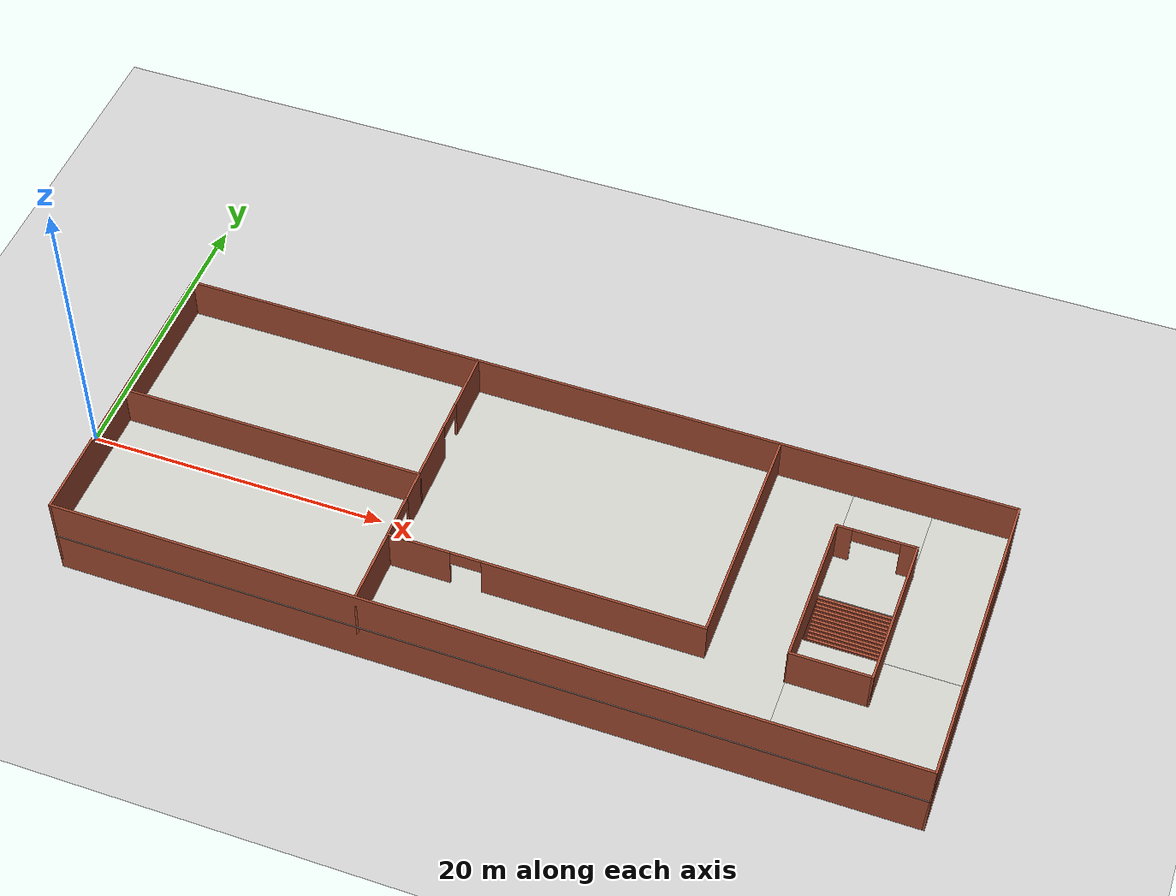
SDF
<sdf version="1.7">
 <world name="default">
  <light name="sun" type="directional">
   <pose>0 0 10 0 -0 0</pose>
   <diffuse>0.8 0.8 0.8 1</diffuse>
   <specular>0.2 0.2 0.2 1</specular>
   <attenuation>
    <range>1000</range>
    <constant>0.9</constant>
    <linear>0.01</linear>
    <quadratic>0.001</quadratic>
   </attenuation>
   <direction>-0.5 0.1 -0.9</direction>
   <spot><inner_angle>0</inner_angle><outer_angle>0</outer_angle><falloff>0</falloff></spot>
  </light>
  <model name="ground_plane">
   <static>1</static>
   <link name="link">
    <collision name="collision">
     <geometry><plane><normal>0 0 1</normal><size>100 100</size></plane></geometry>
     <surface>
      <contact><collide_bitmask>65535</collide_bitmask></contact>
      <friction><ode><mu>100</mu><mu2>50</mu2></ode></friction>
     </surface>
    </collision>
    <visual name="visual">
     <cast_shadows>0</cast_shadows>
     <geometry><plane><normal>0 0 1</normal><size>100 100</size></plane></geometry>
     <material>
      <script><uri>file://media/materials/scripts/gazebo.material</uri><name>Gazebo/Grey</name></script>
     </material>
    </visual>
   </link>
  </model>
  <gravity>0 0 -9.8</gravity>
  <magnetic_field>6e-06 2.3e-05 -4.2e-05</magnetic_field>
  <atmosphere type="adiabatic"/>
  <physics name="default_physics" default="0" type="ode">
   <max_step_size>0.001</max_step_size>
   <real_time_factor>1</real_time_factor>
   <real_time_update_rate>1000</real_time_update_rate>
  </physics>
  <scene><ambient>0.4 0.4 0.4 1</ambient><background>0.7 0.7 0.7 1</background><shadows>1</shadows></scene>
  <spherical_coordinates>
   <surface_model>EARTH_WGS84</surface_model>
   <latitude_deg>0</latitude_deg>
   <longitude_deg>0</longitude_deg>
   <elevation>0</elevation>
   <heading_deg>0</heading_deg>
  </spherical_coordinates>
  <model name="Untitled_0">
   <pose>30.3299 -0.125426 0 0 0 -0.004243</pose>
   <link name="Floor_9">
    <pose>0 0 3 0 -0 0</pose>
    <visual name="Floor_9_Visual_0">
     <pose>-5.0375 0 0.05 0 -0 0</pose>
     <geometry><box><size>45.075 20.15 0.1</size></box></geometry>
     <material>
      <script><uri>file://media/materials/scripts/gazebo.material</uri><name>Gazebo/CeilingTiled</name></script>
      <ambient>1 1 1 1</ambient>
     </material>
     <meta><layer>1</layer></meta>
    </visual>
    <collision name="Floor_9_Collision_0">
     <geometry><box><size>45.075 20.15 0.1</size></box></geometry>
     <pose>-5.0375 0 0.05 0 -0 0</pose>
    </collision>
    <visual name="Floor_9_Visual_1">
     <pose>22.5375 -5.9125 0.05 0 -0 0</pose>
     <geometry><box><size>10.075 8.325 0.1</size></box></geometry>
     <material>
      <script><uri>file://media/materials/scripts/gazebo.material</uri><name>Gazebo/CeilingTiled</name></script>
      <ambient>1 1 1 1</ambient>
     </material>
     <meta><layer>1</layer></meta>
    </visual>
    <collision name="Floor_9_Collision_1">
     <geometry><box><size>10.075 8.325 0.1</size></box></geometry>
     <pose>22.5375 -5.9125 0.05 0 -0 0</pose>
    </collision>
    <visual name="Floor_9_Visual_2">
     <pose>25.0375 4.1625 0.05 0 -0 0</pose>
     <geometry><box><size>5.075 11.825 0.1</size></box></geometry>
     <material>
      <script><uri>file://media/materials/scripts/gazebo.material</uri><name>Gazebo/CeilingTiled</name></script>
      <ambient>1 1 1 1</ambient>
     </material>
     <meta><layer>1</layer></meta>
    </visual>
    <collision name="Floor_9_Collision_2">
     <geometry><box><size>5.075 11.825 0.1</size></box></geometry>
     <pose>25.0375 4.1625 0.05 0 -0 0</pose>
    </collision>
    <visual name="Floor_9_Visual_3">
     <pose>20 5.9125 0.05 0 -0 0</pose>
     <geometry><box><size>5 8.325 0.1</size></box></geometry>
     <material>
      <script><uri>file://media/materials/scripts/gazebo.material</uri><name>Gazebo/CeilingTiled</name></script>
      <ambient>1 1 1 1</ambient>
     </material>
     <meta><layer>1</layer></meta>
    </visual>
    <collision name="Floor_9_Collision_3">
     <geometry><box><size>5 8.325 0.1</size></box></geometry>
     <pose>20 5.9125 0.05 0 -0 0</pose>
    </collision>
   </link>
   <link name="Stairs_1">
    <visual name="Stairs_1_Visual_0">
     <pose>20 -1.6625 0.075 0 -0 -3.14159</pose>
     <geometry><box><size>5 0.175 0.15</size></box></geometry>
     <material>
      <script><uri>file://media/materials/scripts/gazebo.material</uri><name>Gazebo/Bricks</name></script>
      <ambient>1 1 1 1</ambient>
     </material>
     <meta><layer>0</layer></meta>
    </visual>
    <collision name="Stairs_1_Collision_0">
     <geometry><box><size>5 0.175 0.15</size></box></geometry>
     <pose>20 -1.6625 0.075 0 -0 -3.14159</pose>
    </collision>
    <visual name="Stairs_1_Visual_1">
     <pose>20 -1.4875 0.225 0 -0 -3.14159</pose>
     <geometry><box><size>5 0.175 0.15</size></box></geometry>
     <material>
      <script><uri>file://media/materials/scripts/gazebo.material</uri><name>Gazebo/Bricks</name></script>
      <ambient>1 1 1 1</ambient>
     </material>
     <meta><layer>0</layer></meta>
    </visual>
    <collision name="Stairs_1_Collision_1">
     <geometry><box><size>5 0.175 0.15</size></box></geometry>
     <pose>20 -1.4875 0.225 0 -0 -3.14159</pose>
    </collision>
    <visual name="Stairs_1_Visual_2">
     <pose>20 -1.3125 0.375 0 -0 -3.14159</pose>
     <geometry><box><size>5 0.175 0.15</size></box></geometry>
     <material>
      <script><uri>file://media/materials/scripts/gazebo.material</uri><name>Gazebo/Bricks</name></script>
      <ambient>1 1 1 1</ambient>
     </material>
     <meta><layer>0</layer></meta>
    </visual>
    <collision name="Stairs_1_Collision_2">
     <geometry><box><size>5 0.175 0.15</size></box></geometry>
     <pose>20 -1.3125 0.375 0 -0 -3.14159</pose>
    </collision>
    <visual name="Stairs_1_Visual_3">
     <pose>20 -1.1375 0.525 0 -0 -3.14159</pose>
     <geometry><box><size>5 0.175 0.15</size></box></geometry>
     <material>
      <script><uri>file://media/materials/scripts/gazebo.material</uri><name>Gazebo/Bricks</name></script>
      <ambient>1 1 1 1</ambient>
     </material>
     <meta><layer>0</layer></meta>
    </visual>
    <collision name="Stairs_1_Collision_3">
     <geometry><box><size>5 0.175 0.15</size></box></geometry>
     <pose>20 -1.1375 0.525 0 -0 -3.14159</pose>
    </collision>
    <visual name="Stairs_1_Visual_4">
     <pose>20 -0.9625 0.675 0 -0 -3.14159</pose>
     <geometry><box><size>5 0.175 0.15</size></box></geometry>
     <material>
      <script><uri>file://media/materials/scripts/gazebo.material</uri><name>Gazebo/Bricks</name></script>
      <ambient>1 1 1 1</ambient>
     </material>
     <meta><layer>0</layer></meta>
    </visual>
    <collision name="Stairs_1_Collision_4">
     <geometry><box><size>5 0.175 0.15</size></box></geometry>
     <pose>20 -0.9625 0.675 0 -0 -3.14159</pose>
    </collision>
    <visual name="Stairs_1_Visual_5">
     <pose>20 -0.7875 0.825 0 -0 -3.14159</pose>
     <geometry><box><size>5 0.175 0.15</size></box></geometry>
     <material>
      <script><uri>file://media/materials/scripts/gazebo.material</uri><name>Gazebo/Bricks</name></script>
      <ambient>1 1 1 1</ambient>
     </material>
     <meta><layer>0</layer></meta>
    </visual>
    <collision name="Stairs_1_Collision_5">
     <geometry><box><size>5 0.175 0.15</size></box></geometry>
     <pose>20 -0.7875 0.825 0 -0 -3.14159</pose>
    </collision>
    <visual name="Stairs_1_Visual_6">
     <pose>20 -0.6125 0.975 0 -0 -3.14159</pose>
     <geometry><box><size>5 0.175 0.15</size></box></geometry>
     <material>
      <script><uri>file://media/materials/scripts/gazebo.material</uri><name>Gazebo/Bricks</name></script>
      <ambient>1 1 1 1</ambient>
     </material>
     <meta><layer>0</layer></meta>
    </visual>
    <collision name="Stairs_1_Collision_6">
     <geometry><box><size>5 0.175 0.15</size></box></geometry>
     <pose>20 -0.6125 0.975 0 -0 -3.14159</pose>
    </collision>
    <visual name="Stairs_1_Visual_7">
     <pose>20 -0.4375 1.125 0 -0 -3.14159</pose>
     <geometry><box><size>5 0.175 0.15</size></box></geometry>
     <material>
      <script><uri>file://media/materials/scripts/gazebo.material</uri><name>Gazebo/Bricks</name></script>
      <ambient>1 1 1 1</ambient>
     </material>
     <meta><layer>0</layer></meta>
    </visual>
    <collision name="Stairs_1_Collision_7">
     <geometry><box><size>5 0.175 0.15</size></box></geometry>
     <pose>20 -0.4375 1.125 0 -0 -3.14159</pose>
    </collision>
    <visual name="Stairs_1_Visual_8">
     <pose>20 -0.2625 1.275 0 -0 -3.14159</pose>
     <geometry><box><size>5 0.175 0.15</size></box></geometry>
     <material>
      <script><uri>file://media/materials/scripts/gazebo.material</uri><name>Gazebo/Bricks</name></script>
      <ambient>1 1 1 1</ambient>
     </material>
     <meta><layer>0</layer></meta>
    </visual>
    <collision name="Stairs_1_Collision_8">
     <geometry><box><size>5 0.175 0.15</size></box></geometry>
     <pose>20 -0.2625 1.275 0 -0 -3.14159</pose>
    </collision>
    <visual name="Stairs_1_Visual_9">
     <pose>20 -0.0875 1.425 0 -0 -3.14159</pose>
     <geometry><box><size>5 0.175 0.15</size></box></geometry>
     <material>
      <script><uri>file://media/materials/scripts/gazebo.material</uri><name>Gazebo/Bricks</name></script>
      <ambient>1 1 1 1</ambient>
     </material>
     <meta><layer>0</layer></meta>
    </visual>
    <collision name="Stairs_1_Collision_9">
     <geometry><box><size>5 0.175 0.15</size></box></geometry>
     <pose>20 -0.0875 1.425 0 -0 -3.14159</pose>
    </collision>
    <visual name="Stairs_1_Visual_10">
     <pose>20 0.0875 1.575 0 -0 -3.14159</pose>
     <geometry><box><size>5 0.175 0.15</size></box></geometry>
     <material>
      <script><uri>file://media/materials/scripts/gazebo.material</uri><name>Gazebo/Bricks</name></script>
      <ambient>1 1 1 1</ambient>
     </material>
     <meta><layer>0</layer></meta>
    </visual>
    <collision name="Stairs_1_Collision_10">
     <geometry><box><size>5 0.175 0.15</size></box></geometry>
     <pose>20 0.0875 1.575 0 -0 -3.14159</pose>
    </collision>
    <visual name="Stairs_1_Visual_11">
     <pose>20 0.2625 1.725 0 -0 -3.14159</pose>
     <geometry><box><size>5 0.175 0.15</size></box></geometry>
     <material>
      <script><uri>file://media/materials/scripts/gazebo.material</uri><name>Gazebo/Bricks</name></script>
      <ambient>1 1 1 1</ambient>
     </material>
     <meta><layer>0</layer></meta>
    </visual>
    <collision name="Stairs_1_Collision_11">
     <geometry><box><size>5 0.175 0.15</size></box></geometry>
     <pose>20 0.2625 1.725 0 -0 -3.14159</pose>
    </collision>
    <visual name="Stairs_1_Visual_12">
     <pose>20 0.4375 1.875 0 -0 -3.14159</pose>
     <geometry><box><size>5 0.175 0.15</size></box></geometry>
     <material>
      <script><uri>file://media/materials/scripts/gazebo.material</uri><name>Gazebo/Bricks</name></script>
      <ambient>1 1 1 1</ambient>
     </material>
     <meta><layer>0</layer></meta>
    </visual>
    <collision name="Stairs_1_Collision_12">
     <geometry><box><size>5 0.175 0.15</size></box></geometry>
     <pose>20 0.4375 1.875 0 -0 -3.14159</pose>
    </collision>
    <visual name="Stairs_1_Visual_13">
     <pose>20 0.6125 2.025 0 -0 -3.14159</pose>
     <geometry><box><size>5 0.175 0.15</size></box></geometry>
     <material>
      <script><uri>file://media/materials/scripts/gazebo.material</uri><name>Gazebo/Bricks</name></script>
      <ambient>1 1 1 1</ambient>
     </material>
     <meta><layer>0</layer></meta>
    </visual>
    <collision name="Stairs_1_Collision_13">
     <geometry><box><size>5 0.175 0.15</size></box></geometry>
     <pose>20 0.6125 2.025 0 -0 -3.14159</pose>
    </collision>
    <visual name="Stairs_1_Visual_14">
     <pose>20 0.7875 2.175 0 -0 -3.14159</pose>
     <geometry><box><size>5 0.175 0.15</size></box></geometry>
     <material>
      <script><uri>file://media/materials/scripts/gazebo.material</uri><name>Gazebo/Bricks</name></script>
      <ambient>1 1 1 1</ambient>
     </material>
     <meta><layer>0</layer></meta>
    </visual>
    <collision name="Stairs_1_Collision_14">
     <geometry><box><size>5 0.175 0.15</size></box></geometry>
     <pose>20 0.7875 2.175 0 -0 -3.14159</pose>
    </collision>
    <visual name="Stairs_1_Visual_15">
     <pose>20 0.9625 2.325 0 -0 -3.14159</pose>
     <geometry><box><size>5 0.175 0.15</size></box></geometry>
     <material>
      <script><uri>file://media/materials/scripts/gazebo.material</uri><name>Gazebo/Bricks</name></script>
      <ambient>1 1 1 1</ambient>
     </material>
     <meta><layer>0</layer></meta>
    </visual>
    <collision name="Stairs_1_Collision_15">
     <geometry><box><size>5 0.175 0.15</size></box></geometry>
     <pose>20 0.9625 2.325 0 -0 -3.14159</pose>
    </collision>
    <visual name="Stairs_1_Visual_16">
     <pose>20 1.1375 2.475 0 -0 -3.14159</pose>
     <geometry><box><size>5 0.175 0.15</size></box></geometry>
     <material>
      <script><uri>file://media/materials/scripts/gazebo.material</uri><name>Gazebo/Bricks</name></script>
      <ambient>1 1 1 1</ambient>
     </material>
     <meta><layer>0</layer></meta>
    </visual>
    <collision name="Stairs_1_Collision_16">
     <geometry><box><size>5 0.175 0.15</size></box></geometry>
     <pose>20 1.1375 2.475 0 -0 -3.14159</pose>
    </collision>
    <visual name="Stairs_1_Visual_17">
     <pose>20 1.3125 2.625 0 -0 -3.14159</pose>
     <geometry><box><size>5 0.175 0.15</size></box></geometry>
     <material>
      <script><uri>file://media/materials/scripts/gazebo.material</uri><name>Gazebo/Bricks</name></script>
      <ambient>1 1 1 1</ambient>
     </material>
     <meta><layer>0</layer></meta>
    </visual>
    <collision name="Stairs_1_Collision_17">
     <geometry><box><size>5 0.175 0.15</size></box></geometry>
     <pose>20 1.3125 2.625 0 -0 -3.14159</pose>
    </collision>
    <visual name="Stairs_1_Visual_18">
     <pose>20 1.4875 2.775 0 -0 -3.14159</pose>
     <geometry><box><size>5 0.175 0.15</size></box></geometry>
     <material>
      <script><uri>file://media/materials/scripts/gazebo.material</uri><name>Gazebo/Bricks</name></script>
      <ambient>1 1 1 1</ambient>
     </material>
     <meta><layer>0</layer></meta>
    </visual>
    <collision name="Stairs_1_Collision_18">
     <geometry><box><size>5 0.175 0.15</size></box></geometry>
     <pose>20 1.4875 2.775 0 -0 -3.14159</pose>
    </collision>
    <visual name="Stairs_1_Visual_19">
     <pose>20 1.6625 2.925 0 -0 -3.14159</pose>
     <geometry><box><size>5 0.175 0.15</size></box></geometry>
     <material>
      <script><uri>file://media/materials/scripts/gazebo.material</uri><name>Gazebo/Bricks</name></script>
      <ambient>1 1 1 1</ambient>
     </material>
     <meta><layer>0</layer></meta>
    </visual>
    <collision name="Stairs_1_Collision_19">
     <geometry><box><size>5 0.175 0.15</size></box></geometry>
     <pose>20 1.6625 2.925 0 -0 -3.14159</pose>
    </collision>
   </link>
   <link name="Wall_120">
    <collision name="Wall_120_Collision">
     <geometry><box><size>55.15 0.15 3</size></box></geometry>
     <pose>0 0 1.5 0 -0 0</pose>
    </collision>
    <visual name="Wall_120_Visual">
     <pose>0 0 1.5 0 -0 0</pose>
     <geometry><box><size>55.15 0.15 3</size></box></geometry>
     <material>
      <script><uri>file://media/materials/scripts/gazebo.material</uri><name>Gazebo/Bricks</name></script>
      <ambient>1 1 1 1</ambient>
     </material>
     <meta><layer>1</layer></meta>
    </visual>
    <pose>0 -10 3 0 -0 0</pose>
   </link>
   <link name="Wall_121">
    <collision name="Wall_121_Collision">
     <geometry><box><size>20.15 0.15 3</size></box></geometry>
     <pose>0 0 1.5 0 -0 0</pose>
    </collision>
    <visual name="Wall_121_Visual">
     <pose>0 0 1.5 0 -0 0</pose>
     <geometry><box><size>20.15 0.15 3</size></box></geometry>
     <material>
      <script><uri>file://media/materials/scripts/gazebo.material</uri><name>Gazebo/Bricks</name></script>
      <ambient>1 1 1 1</ambient>
     </material>
     <meta><layer>1</layer></meta>
    </visual>
    <pose>-27.5 0 3 0 -0 1.5708</pose>
   </link>
   <link name="Wall_122">
    <collision name="Wall_122_Collision">
     <geometry><box><size>55.15 0.15 3</size></box></geometry>
     <pose>0 0 1.5 0 -0 0</pose>
    </collision>
    <visual name="Wall_122_Visual">
     <pose>0 0 1.5 0 -0 0</pose>
     <geometry><box><size>55.15 0.15 3</size></box></geometry>
     <material>
      <script><uri>file://media/materials/scripts/gazebo.material</uri><name>Gazebo/Bricks</name></script>
      <ambient>1 1 1 1</ambient>
     </material>
     <meta><layer>1</layer></meta>
    </visual>
    <pose>0 10 3 0 -0 0</pose>
   </link>
   <link name="Wall_123">
    <collision name="Wall_123_Collision">
     <geometry><box><size>20.15 0.15 3</size></box></geometry>
     <pose>0 0 1.5 0 -0 0</pose>
    </collision>
    <visual name="Wall_123_Visual">
     <pose>0 0 1.5 0 -0 0</pose>
     <geometry><box><size>20.15 0.15 3</size></box></geometry>
     <material>
      <script><uri>file://media/materials/scripts/gazebo.material</uri><name>Gazebo/Bricks</name></script>
      <ambient>1 1 1 1</ambient>
     </material>
     <meta><layer>1</layer></meta>
    </visual>
    <pose>27.5 0 3 0 -0 -1.5708</pose>
   </link>
   <link name="Wall_124">
    <collision name="Wall_124_Collision">
     <geometry><box><size>20.15 0.15 3</size></box></geometry>
     <pose>0 0 1.5 0 -0 0</pose>
    </collision>
    <visual name="Wall_124_Visual">
     <pose>0 0 1.5 0 -0 0</pose>
     <geometry><box><size>20.15 0.15 3</size></box></geometry>
     <material>
      <script><uri>file://media/materials/scripts/gazebo.material</uri><name>Gazebo/Bricks</name></script>
      <ambient>1 1 1 1</ambient>
     </material>
     <meta><layer>1</layer></meta>
    </visual>
    <pose>-17.5 0 3 0 -0 0</pose>
   </link>
   <link name="Wall_125">
    <pose>-7.5 0 3 0 -0 -1.5708</pose>
    <visual name="Wall_125_Visual_0">
     <pose>-8.0375 0 1.5 0 -0 0</pose>
     <geometry><box><size>4.075 0.15 3</size></box></geometry>
     <material>
      <script><uri>file://media/materials/scripts/gazebo.material</uri><name>Gazebo/Bricks</name></script>
      <ambient>1 1 1 1</ambient>
     </material>
     <meta><layer>1</layer></meta>
    </visual>
    <collision name="Wall_125_Collision_0">
     <geometry><box><size>4.075 0.15 3</size></box></geometry>
     <pose>-8.0375 0 1.5 0 -0 0</pose>
    </collision>
    <visual name="Wall_125_Visual_1">
     <pose>-1 0 1.5 0 -0 0</pose>
     <geometry><box><size>6 0.15 3</size></box></geometry>
     <material>
      <script><uri>file://media/materials/scripts/gazebo.material</uri><name>Gazebo/Bricks</name></script>
      <ambient>1 1 1 1</ambient>
     </material>
     <meta><layer>1</layer></meta>
    </visual>
    <collision name="Wall_125_Collision_1">
     <geometry><box><size>6 0.15 3</size></box></geometry>
     <pose>-1 0 1.5 0 -0 0</pose>
    </collision>
    <visual name="Wall_125_Visual_2">
     <pose>7.0375 0 1.5 0 -0 0</pose>
     <geometry><box><size>6.075 0.15 3</size></box></geometry>
     <material>
      <script><uri>file://media/materials/scripts/gazebo.material</uri><name>Gazebo/Bricks</name></script>
      <ambient>1 1 1 1</ambient>
     </material>
     <meta><layer>1</layer></meta>
    </visual>
    <collision name="Wall_125_Collision_2">
     <geometry><box><size>6.075 0.15 3</size></box></geometry>
     <pose>7.0375 0 1.5 0 -0 0</pose>
    </collision>
    <visual name="Wall_125_Visual_3">
     <pose>-5 0 2.5 0 -0 0</pose>
     <geometry><box><size>2 0.15 1</size></box></geometry>
     <material>
      <script><uri>file://media/materials/scripts/gazebo.material</uri><name>Gazebo/Bricks</name></script>
      <ambient>1 1 1 1</ambient>
     </material>
     <meta><layer>1</layer></meta>
    </visual>
    <collision name="Wall_125_Collision_3">
     <geometry><box><size>2 0.15 1</size></box></geometry>
     <pose>-5 0 2.5 0 -0 0</pose>
    </collision>
    <visual name="Wall_125_Visual_4">
     <pose>3 0 2.5 0 -0 0</pose>
     <geometry><box><size>2 0.15 1</size></box></geometry>
     <material>
      <script><uri>file://media/materials/scripts/gazebo.material</uri><name>Gazebo/Bricks</name></script>
      <ambient>1 1 1 1</ambient>
     </material>
     <meta><layer>1</layer></meta>
    </visual>
    <collision name="Wall_125_Collision_4">
     <geometry><box><size>2 0.15 1</size></box></geometry>
     <pose>3 0 2.5 0 -0 0</pose>
    </collision>
   </link>
   <link name="Wall_126">
    <pose>2.5 -5 3 0 -0 0</pose>
    <visual name="Wall_126_Visual_0">
     <pose>-8.0375 0 1.5 0 -0 0</pose>
     <geometry><box><size>4.075 0.15 3</size></box></geometry>
     <material>
      <script><uri>file://media/materials/scripts/gazebo.material</uri><name>Gazebo/Bricks</name></script>
      <ambient>1 1 1 1</ambient>
     </material>
     <meta><layer>1</layer></meta>
    </visual>
    <collision name="Wall_126_Collision_0">
     <geometry><box><size>4.075 0.15 3</size></box></geometry>
     <pose>-8.0375 0 1.5 0 -0 0</pose>
    </collision>
    <visual name="Wall_126_Visual_1">
     <pose>3.0375 0 1.5 0 -0 0</pose>
     <geometry><box><size>14.075 0.15 3</size></box></geometry>
     <material>
      <script><uri>file://media/materials/scripts/gazebo.material</uri><name>Gazebo/Bricks</name></script>
      <ambient>1 1 1 1</ambient>
     </material>
     <meta><layer>1</layer></meta>
    </visual>
    <collision name="Wall_126_Collision_1">
     <geometry><box><size>14.075 0.15 3</size></box></geometry>
     <pose>3.0375 0 1.5 0 -0 0</pose>
    </collision>
    <visual name="Wall_126_Visual_2">
     <pose>-5 0 2.5 0 -0 0</pose>
     <geometry><box><size>2 0.15 1</size></box></geometry>
     <material>
      <script><uri>file://media/materials/scripts/gazebo.material</uri><name>Gazebo/Bricks</name></script>
      <ambient>1 1 1 1</ambient>
     </material>
     <meta><layer>1</layer></meta>
    </visual>
    <collision name="Wall_126_Collision_2">
     <geometry><box><size>2 0.15 1</size></box></geometry>
     <pose>-5 0 2.5 0 -0 0</pose>
    </collision>
   </link>
   <link name="Wall_127">
    <collision name="Wall_127_Collision">
     <geometry><box><size>15.15 0.15 3</size></box></geometry>
     <pose>0 0 1.5 0 -0 0</pose>
    </collision>
    <visual name="Wall_127_Visual">
     <pose>0 0 1.5 0 -0 0</pose>
     <geometry><box><size>15.15 0.15 3</size></box></geometry>
     <material>
      <script><uri>file://media/materials/scripts/gazebo.material</uri><name>Gazebo/Bricks</name></script>
      <ambient>1 1 1 1</ambient>
     </material>
     <meta><layer>1</layer></meta>
    </visual>
    <pose>12.5 2.5 3 0 -0 1.5708</pose>
   </link>
   <link name="Wall_128">
    <collision name="Wall_128_Collision">
     <geometry><box><size>5.15 0.15 3</size></box></geometry>
     <pose>0 0 1.5 0 -0 0</pose>
    </collision>
    <visual name="Wall_128_Visual">
     <pose>0 0 1.5 0 -0 0</pose>
     <geometry><box><size>5.15 0.15 3</size></box></geometry>
     <material>
      <script><uri>file://media/materials/scripts/gazebo.material</uri><name>Gazebo/Bricks</name></script>
      <ambient>1 1 1 1</ambient>
     </material>
     <meta><layer>1</layer></meta>
    </visual>
    <pose>20 -5 3 0 -0 0</pose>
   </link>
   <link name="Wall_129">
    <pose>20 5 3 0 -0 0</pose>
    <visual name="Wall_129_Visual_0">
     <pose>-2.0375 0 1.5 0 -0 0</pose>
     <geometry><box><size>1.075 0.15 3</size></box></geometry>
     <material>
      <script><uri>file://media/materials/scripts/gazebo.material</uri><name>Gazebo/Bricks</name></script>
      <ambient>1 1 1 1</ambient>
     </material>
     <meta><layer>1</layer></meta>
    </visual>
    <collision name="Wall_129_Collision_0">
     <geometry><box><size>1.075 0.15 3</size></box></geometry>
     <pose>-2.0375 0 1.5 0 -0 0</pose>
    </collision>
    <visual name="Wall_129_Visual_1">
     <pose>2.0375 0 1.5 0 -0 0</pose>
     <geometry><box><size>1.075 0.15 3</size></box></geometry>
     <material>
      <script><uri>file://media/materials/scripts/gazebo.material</uri><name>Gazebo/Bricks</name></script>
      <ambient>1 1 1 1</ambient>
     </material>
     <meta><layer>1</layer></meta>
    </visual>
    <collision name="Wall_129_Collision_1">
     <geometry><box><size>1.075 0.15 3</size></box></geometry>
     <pose>2.0375 0 1.5 0 -0 0</pose>
    </collision>
    <visual name="Wall_129_Visual_2">
     <pose>0 0 2.5 0 -0 0</pose>
     <geometry><box><size>3 0.15 1</size></box></geometry>
     <material>
      <script><uri>file://media/materials/scripts/gazebo.material</uri><name>Gazebo/Bricks</name></script>
      <ambient>1 1 1 1</ambient>
     </material>
     <meta><layer>1</layer></meta>
    </visual>
    <collision name="Wall_129_Collision_2">
     <geometry><box><size>3 0.15 1</size></box></geometry>
     <pose>0 0 2.5 0 -0 0</pose>
    </collision>
   </link>
   <link name="Wall_130">
    <collision name="Wall_130_Collision">
     <geometry><box><size>10.15 0.15 3</size></box></geometry>
     <pose>0 0 1.5 0 -0 0</pose>
    </collision>
    <visual name="Wall_130_Visual">
     <pose>0 0 1.5 0 -0 0</pose>
     <geometry><box><size>10.15 0.15 3</size></box></geometry>
     <material>
      <script><uri>file://media/materials/scripts/gazebo.material</uri><name>Gazebo/Bricks</name></script>
      <ambient>1 1 1 1</ambient>
     </material>
     <meta><layer>1</layer></meta>
    </visual>
    <pose>22.5 0 3 0 -0 -1.5708</pose>
   </link>
   <link name="Wall_131">
    <collision name="Wall_131_Collision">
     <geometry><box><size>10.15 0.15 3</size></box></geometry>
     <pose>0 0 1.5 0 -0 0</pose>
    </collision>
    <visual name="Wall_131_Visual">
     <pose>0 0 1.5 0 -0 0</pose>
     <geometry><box><size>10.15 0.15 3</size></box></geometry>
     <material>
      <script><uri>file://media/materials/scripts/gazebo.material</uri><name>Gazebo/Bricks</name></script>
      <ambient>1 1 1 1</ambient>
     </material>
     <meta><layer>1</layer></meta>
    </visual>
    <pose>17.5 0 3 0 -0 -1.5708</pose>
   </link>
   <link name="Wall_24">
    <collision name="Wall_24_Collision">
     <geometry><box><size>55.15 0.15 3</size></box></geometry>
     <pose>0 0 1.5 0 -0 0</pose>
    </collision>
    <visual name="Wall_24_Visual">
     <pose>0 0 1.5 0 -0 0</pose>
     <geometry><box><size>55.15 0.15 3</size></box></geometry>
     <material>
      <script><uri>file://media/materials/scripts/gazebo.material</uri><name>Gazebo/Bricks</name></script>
      <ambient>1 1 1 1</ambient>
     </material>
     <meta><layer>0</layer></meta>
    </visual>
    <pose>0 -10 0 0 -0 0</pose>
   </link>
   <link name="Wall_26">
    <pose>-27.5 0 0 0 -0 1.5708</pose>
    <visual name="Wall_26_Visual_0">
     <pose>-8.0375 0 1.5 0 -0 0</pose>
     <geometry><box><size>4.075 0.15 3</size></box></geometry>
     <material>
      <script><uri>file://media/materials/scripts/gazebo.material</uri><name>Gazebo/Bricks</name></script>
      <ambient>1 1 1 1</ambient>
     </material>
     <meta><layer>0</layer></meta>
    </visual>
    <collision name="Wall_26_Collision_0">
     <geometry><box><size>4.075 0.15 3</size></box></geometry>
     <pose>-8.0375 0 1.5 0 -0 0</pose>
    </collision>
    <visual name="Wall_26_Visual_1">
     <pose>0 0 1.5 0 -0 0</pose>
     <geometry><box><size>8 0.15 3</size></box></geometry>
     <material>
      <script><uri>file://media/materials/scripts/gazebo.material</uri><name>Gazebo/Bricks</name></script>
      <ambient>1 1 1 1</ambient>
     </material>
     <meta><layer>0</layer></meta>
    </visual>
    <collision name="Wall_26_Collision_1">
     <geometry><box><size>8 0.15 3</size></box></geometry>
     <pose>0 0 1.5 0 -0 0</pose>
    </collision>
    <visual name="Wall_26_Visual_2">
     <pose>8.0375 0 1.5 0 -0 0</pose>
     <geometry><box><size>4.075 0.15 3</size></box></geometry>
     <material>
      <script><uri>file://media/materials/scripts/gazebo.material</uri><name>Gazebo/Bricks</name></script>
      <ambient>1 1 1 1</ambient>
     </material>
     <meta><layer>0</layer></meta>
    </visual>
    <collision name="Wall_26_Collision_2">
     <geometry><box><size>4.075 0.15 3</size></box></geometry>
     <pose>8.0375 0 1.5 0 -0 0</pose>
    </collision>
    <visual name="Wall_26_Visual_3">
     <pose>-5 0 2.5 0 -0 0</pose>
     <geometry><box><size>2 0.15 1</size></box></geometry>
     <material>
      <script><uri>file://media/materials/scripts/gazebo.material</uri><name>Gazebo/Bricks</name></script>
      <ambient>1 1 1 1</ambient>
     </material>
     <meta><layer>0</layer></meta>
    </visual>
    <collision name="Wall_26_Collision_3">
     <geometry><box><size>2 0.15 1</size></box></geometry>
     <pose>-5 0 2.5 0 -0 0</pose>
    </collision>
    <visual name="Wall_26_Visual_4">
     <pose>5 0 2.5 0 -0 0</pose>
     <geometry><box><size>2 0.15 1</size></box></geometry>
     <material>
      <script><uri>file://media/materials/scripts/gazebo.material</uri><name>Gazebo/Bricks</name></script>
      <ambient>1 1 1 1</ambient>
     </material>
     <meta><layer>0</layer></meta>
    </visual>
    <collision name="Wall_26_Collision_4">
     <geometry><box><size>2 0.15 1</size></box></geometry>
     <pose>5 0 2.5 0 -0 0</pose>
    </collision>
   </link>
   <link name="Wall_28">
    <collision name="Wall_28_Collision">
     <geometry><box><size>55.15 0.15 3</size></box></geometry>
     <pose>0 0 1.5 0 -0 0</pose>
    </collision>
    <visual name="Wall_28_Visual">
     <pose>0 0 1.5 0 -0 0</pose>
     <geometry><box><size>55.15 0.15 3</size></box></geometry>
     <material>
      <script><uri>file://media/materials/scripts/gazebo.material</uri><name>Gazebo/Bricks</name></script>
      <ambient>1 1 1 1</ambient>
     </material>
     <meta><layer>0</layer></meta>
    </visual>
    <pose>0 10 0 0 -0 0</pose>
   </link>
   <link name="Wall_36">
    <collision name="Wall_36_Collision">
     <geometry><box><size>20.15 0.15 3</size></box></geometry>
     <pose>0 0 1.5 0 -0 0</pose>
    </collision>
    <visual name="Wall_36_Visual">
     <pose>0 0 1.5 0 -0 0</pose>
     <geometry><box><size>20.15 0.15 3</size></box></geometry>
     <material>
      <script><uri>file://media/materials/scripts/gazebo.material</uri><name>Gazebo/Bricks</name></script>
      <ambient>1 1 1 1</ambient>
     </material>
     <meta><layer>0</layer></meta>
    </visual>
    <pose>27.5 0 0 0 -0 -1.5708</pose>
   </link>
   <link name="Wall_47">
    <pose>-17.5 0 0 0 -0 0</pose>
    <visual name="Wall_47_Visual_0">
     <pose>-5.5375 0 1.5 0 -0 0</pose>
     <geometry><box><size>9.075 0.15 3</size></box></geometry>
     <material>
      <script><uri>file://media/materials/scripts/gazebo.material</uri><name>Gazebo/Bricks</name></script>
      <ambient>1 1 1 1</ambient>
     </material>
     <meta><layer>0</layer></meta>
    </visual>
    <collision name="Wall_47_Collision_0">
     <geometry><box><size>9.075 0.15 3</size></box></geometry>
     <pose>-5.5375 0 1.5 0 -0 0</pose>
    </collision>
    <visual name="Wall_47_Visual_1">
     <pose>5.5375 0 1.5 0 -0 0</pose>
     <geometry><box><size>9.075 0.15 3</size></box></geometry>
     <material>
      <script><uri>file://media/materials/scripts/gazebo.material</uri><name>Gazebo/Bricks</name></script>
      <ambient>1 1 1 1</ambient>
     </material>
     <meta><layer>0</layer></meta>
    </visual>
    <collision name="Wall_47_Collision_1">
     <geometry><box><size>9.075 0.15 3</size></box></geometry>
     <pose>5.5375 0 1.5 0 -0 0</pose>
    </collision>
    <visual name="Wall_47_Visual_2">
     <pose>0 0 2.5 0 -0 0</pose>
     <geometry><box><size>2 0.15 1</size></box></geometry>
     <material>
      <script><uri>file://media/materials/scripts/gazebo.material</uri><name>Gazebo/Bricks</name></script>
      <ambient>1 1 1 1</ambient>
     </material>
     <meta><layer>0</layer></meta>
    </visual>
    <collision name="Wall_47_Collision_2">
     <geometry><box><size>2 0.15 1</size></box></geometry>
     <pose>0 0 2.5 0 -0 0</pose>
    </collision>
   </link>
   <link name="Wall_55">
    <pose>-7.5 0 0 0 -0 -1.5708</pose>
    <visual name="Wall_55_Visual_0">
     <pose>-8.0375 0 1.5 0 -0 0</pose>
     <geometry><box><size>4.075 0.15 3</size></box></geometry>
     <material>
      <script><uri>file://media/materials/scripts/gazebo.material</uri><name>Gazebo/Bricks</name></script>
      <ambient>1 1 1 1</ambient>
     </material>
     <meta><layer>0</layer></meta>
    </visual>
    <collision name="Wall_55_Collision_0">
     <geometry><box><size>4.075 0.15 3</size></box></geometry>
     <pose>-8.0375 0 1.5 0 -0 0</pose>
    </collision>
    <visual name="Wall_55_Visual_1">
     <pose>-1.25 0 1.5 0 -0 0</pose>
     <geometry><box><size>5.5 0.15 3</size></box></geometry>
     <material>
      <script><uri>file://media/materials/scripts/gazebo.material</uri><name>Gazebo/Bricks</name></script>
      <ambient>1 1 1 1</ambient>
     </material>
     <meta><layer>0</layer></meta>
    </visual>
    <collision name="Wall_55_Collision_1">
     <geometry><box><size>5.5 0.15 3</size></box></geometry>
     <pose>-1.25 0 1.5 0 -0 0</pose>
    </collision>
    <visual name="Wall_55_Visual_2">
     <pose>5 0 1.5 0 -0 0</pose>
     <geometry><box><size>3 0.15 3</size></box></geometry>
     <material>
      <script><uri>file://media/materials/scripts/gazebo.material</uri><name>Gazebo/Bricks</name></script>
      <ambient>1 1 1 1</ambient>
     </material>
     <meta><layer>0</layer></meta>
    </visual>
    <collision name="Wall_55_Collision_2">
     <geometry><box><size>3 0.15 3</size></box></geometry>
     <pose>5 0 1.5 0 -0 0</pose>
    </collision>
    <visual name="Wall_55_Visual_3">
     <pose>9.2875 0 1.5 0 -0 0</pose>
     <geometry><box><size>1.575 0.15 3</size></box></geometry>
     <material>
      <script><uri>file://media/materials/scripts/gazebo.material</uri><name>Gazebo/Bricks</name></script>
      <ambient>1 1 1 1</ambient>
     </material>
     <meta><layer>0</layer></meta>
    </visual>
    <collision name="Wall_55_Collision_3">
     <geometry><box><size>1.575 0.15 3</size></box></geometry>
     <pose>9.2875 0 1.5 0 -0 0</pose>
    </collision>
    <visual name="Wall_55_Visual_4">
     <pose>-5 0 2.5 0 -0 0</pose>
     <geometry><box><size>2 0.15 1</size></box></geometry>
     <material>
      <script><uri>file://media/materials/scripts/gazebo.material</uri><name>Gazebo/Bricks</name></script>
      <ambient>1 1 1 1</ambient>
     </material>
     <meta><layer>0</layer></meta>
    </visual>
    <collision name="Wall_55_Collision_4">
     <geometry><box><size>2 0.15 1</size></box></geometry>
     <pose>-5 0 2.5 0 -0 0</pose>
    </collision>
    <visual name="Wall_55_Visual_5">
     <pose>2.5 0 2.5 0 -0 0</pose>
     <geometry><box><size>2 0.15 1</size></box></geometry>
     <material>
      <script><uri>file://media/materials/scripts/gazebo.material</uri><name>Gazebo/Bricks</name></script>
      <ambient>1 1 1 1</ambient>
     </material>
     <meta><layer>0</layer></meta>
    </visual>
    <collision name="Wall_55_Collision_5">
     <geometry><box><size>2 0.15 1</size></box></geometry>
     <pose>2.5 0 2.5 0 -0 0</pose>
    </collision>
    <visual name="Wall_55_Visual_6">
     <pose>7.5 0 2.5 0 -0 0</pose>
     <geometry><box><size>2 0.15 1</size></box></geometry>
     <material>
      <script><uri>file://media/materials/scripts/gazebo.material</uri><name>Gazebo/Bricks</name></script>
      <ambient>1 1 1 1</ambient>
     </material>
     <meta><layer>0</layer></meta>
    </visual>
    <collision name="Wall_55_Collision_6">
     <geometry><box><size>2 0.15 1</size></box></geometry>
     <pose>7.5 0 2.5 0 -0 0</pose>
    </collision>
   </link>
   <link name="Wall_58">
    <pose>2.5 -5 0 0 -0 0</pose>
    <visual name="Wall_58_Visual_0">
     <pose>-8.42805 0 1.5 0 -0 0</pose>
     <geometry><box><size>3.29391 0.15 3</size></box></geometry>
     <material>
      <script><uri>file://media/materials/scripts/gazebo.material</uri><name>Gazebo/Bricks</name></script>
      <ambient>1 1 1 1</ambient>
     </material>
     <meta><layer>0</layer></meta>
    </visual>
    <collision name="Wall_58_Collision_0">
     <geometry><box><size>3.29391 0.15 3</size></box></geometry>
     <pose>-8.42805 0 1.5 0 -0 0</pose>
    </collision>
    <visual name="Wall_58_Visual_1">
     <pose>2.64695 0 1.5 0 -0 0</pose>
     <geometry><box><size>14.8561 0.15 3</size></box></geometry>
     <material>
      <script><uri>file://media/materials/scripts/gazebo.material</uri><name>Gazebo/Bricks</name></script>
      <ambient>1 1 1 1</ambient>
     </material>
     <meta><layer>0</layer></meta>
    </visual>
    <collision name="Wall_58_Collision_1">
     <geometry><box><size>14.8561 0.15 3</size></box></geometry>
     <pose>2.64695 0 1.5 0 -0 0</pose>
    </collision>
    <visual name="Wall_58_Visual_2">
     <pose>-5.78109 0 2.5 0 -0 0</pose>
     <geometry><box><size>2 0.15 1</size></box></geometry>
     <material>
      <script><uri>file://media/materials/scripts/gazebo.material</uri><name>Gazebo/Bricks</name></script>
      <ambient>1 1 1 1</ambient>
     </material>
     <meta><layer>0</layer></meta>
    </visual>
    <collision name="Wall_58_Collision_2">
     <geometry><box><size>2 0.15 1</size></box></geometry>
     <pose>-5.78109 0 2.5 0 -0 0</pose>
    </collision>
   </link>
   <link name="Wall_60">
    <pose>12.5 2.5 0 0 -0 1.5708</pose>
    <visual name="Wall_60_Visual_0">
     <pose>-4.2875 0 1.5 0 -0 0</pose>
     <geometry><box><size>6.575 0.15 3</size></box></geometry>
     <material>
      <script><uri>file://media/materials/scripts/gazebo.material</uri><name>Gazebo/Bricks</name></script>
      <ambient>1 1 1 1</ambient>
     </material>
     <meta><layer>0</layer></meta>
    </visual>
    <collision name="Wall_60_Collision_0">
     <geometry><box><size>6.575 0.15 3</size></box></geometry>
     <pose>-4.2875 0 1.5 0 -0 0</pose>
    </collision>
    <visual name="Wall_60_Visual_1">
     <pose>4.2875 0 1.5 0 -0 0</pose>
     <geometry><box><size>6.575 0.15 3</size></box></geometry>
     <material>
      <script><uri>file://media/materials/scripts/gazebo.material</uri><name>Gazebo/Bricks</name></script>
      <ambient>1 1 1 1</ambient>
     </material>
     <meta><layer>0</layer></meta>
    </visual>
    <collision name="Wall_60_Collision_1">
     <geometry><box><size>6.575 0.15 3</size></box></geometry>
     <pose>4.2875 0 1.5 0 -0 0</pose>
    </collision>
    <visual name="Wall_60_Visual_2">
     <pose>-0 0 2.5 0 -0 0</pose>
     <geometry><box><size>2 0.15 1</size></box></geometry>
     <material>
      <script><uri>file://media/materials/scripts/gazebo.material</uri><name>Gazebo/Bricks</name></script>
      <ambient>1 1 1 1</ambient>
     </material>
     <meta><layer>0</layer></meta>
    </visual>
    <collision name="Wall_60_Collision_2">
     <geometry><box><size>2 0.15 1</size></box></geometry>
     <pose>-0 0 2.5 0 -0 0</pose>
    </collision>
   </link>
   <link name="Wall_62">
    <pose>20 -5 0 0 -0 0</pose>
    <visual name="Wall_62_Visual_0">
     <pose>-1.7875 0 1.5 0 -0 0</pose>
     <geometry><box><size>1.575 0.15 3</size></box></geometry>
     <material>
      <script><uri>file://media/materials/scripts/gazebo.material</uri><name>Gazebo/Bricks</name></script>
      <ambient>1 1 1 1</ambient>
     </material>
     <meta><layer>0</layer></meta>
    </visual>
    <collision name="Wall_62_Collision_0">
     <geometry><box><size>1.575 0.15 3</size></box></geometry>
     <pose>-1.7875 0 1.5 0 -0 0</pose>
    </collision>
    <visual name="Wall_62_Visual_1">
     <pose>1.7875 0 1.5 0 -0 0</pose>
     <geometry><box><size>1.575 0.15 3</size></box></geometry>
     <material>
      <script><uri>file://media/materials/scripts/gazebo.material</uri><name>Gazebo/Bricks</name></script>
      <ambient>1 1 1 1</ambient>
     </material>
     <meta><layer>0</layer></meta>
    </visual>
    <collision name="Wall_62_Collision_1">
     <geometry><box><size>1.575 0.15 3</size></box></geometry>
     <pose>1.7875 0 1.5 0 -0 0</pose>
    </collision>
    <visual name="Wall_62_Visual_2">
     <pose>0 0 2.5 0 -0 0</pose>
     <geometry><box><size>2 0.15 1</size></box></geometry>
     <material>
      <script><uri>file://media/materials/scripts/gazebo.material</uri><name>Gazebo/Bricks</name></script>
      <ambient>1 1 1 1</ambient>
     </material>
     <meta><layer>0</layer></meta>
    </visual>
    <collision name="Wall_62_Collision_2">
     <geometry><box><size>2 0.15 1</size></box></geometry>
     <pose>0 0 2.5 0 -0 0</pose>
    </collision>
   </link>
   <link name="Wall_66">
    <collision name="Wall_66_Collision">
     <geometry><box><size>5.15 0.15 3</size></box></geometry>
     <pose>0 0 1.5 0 -0 0</pose>
    </collision>
    <visual name="Wall_66_Visual">
     <pose>0 0 1.5 0 -0 0</pose>
     <geometry><box><size>5.15 0.15 3</size></box></geometry>
     <material>
      <script><uri>file://media/materials/scripts/gazebo.material</uri><name>Gazebo/Bricks</name></script>
      <ambient>1 1 1 1</ambient>
     </material>
     <meta><layer>0</layer></meta>
    </visual>
    <pose>20 5 0 0 -0 0</pose>
   </link>
   <link name="Wall_68">
    <collision name="Wall_68_Collision">
     <geometry><box><size>10.15 0.15 3</size></box></geometry>
     <pose>0 0 1.5 0 -0 0</pose>
    </collision>
    <visual name="Wall_68_Visual">
     <pose>0 0 1.5 0 -0 0</pose>
     <geometry><box><size>10.15 0.15 3</size></box></geometry>
     <material>
      <script><uri>file://media/materials/scripts/gazebo.material</uri><name>Gazebo/Bricks</name></script>
      <ambient>1 1 1 1</ambient>
     </material>
     <meta><layer>0</layer></meta>
    </visual>
    <pose>22.5 0 0 0 -0 -1.5708</pose>
   </link>
   <link name="Wall_70">
    <collision name="Wall_70_Collision">
     <geometry><box><size>10.15 0.15 3</size></box></geometry>
     <pose>0 0 1.5 0 -0 0</pose>
    </collision>
    <visual name="Wall_70_Visual">
     <pose>0 0 1.5 0 -0 0</pose>
     <geometry><box><size>10.15 0.15 3</size></box></geometry>
     <material>
      <script><uri>file://media/materials/scripts/gazebo.material</uri><name>Gazebo/Bricks</name></script>
      <ambient>1 1 1 1</ambient>
     </material>
     <meta><layer>0</layer></meta>
    </visual>
    <pose>17.5 0 0 0 -0 -1.5708</pose>
   </link>
   <static>1</static>
  </model>
 </world>
</sdf>
